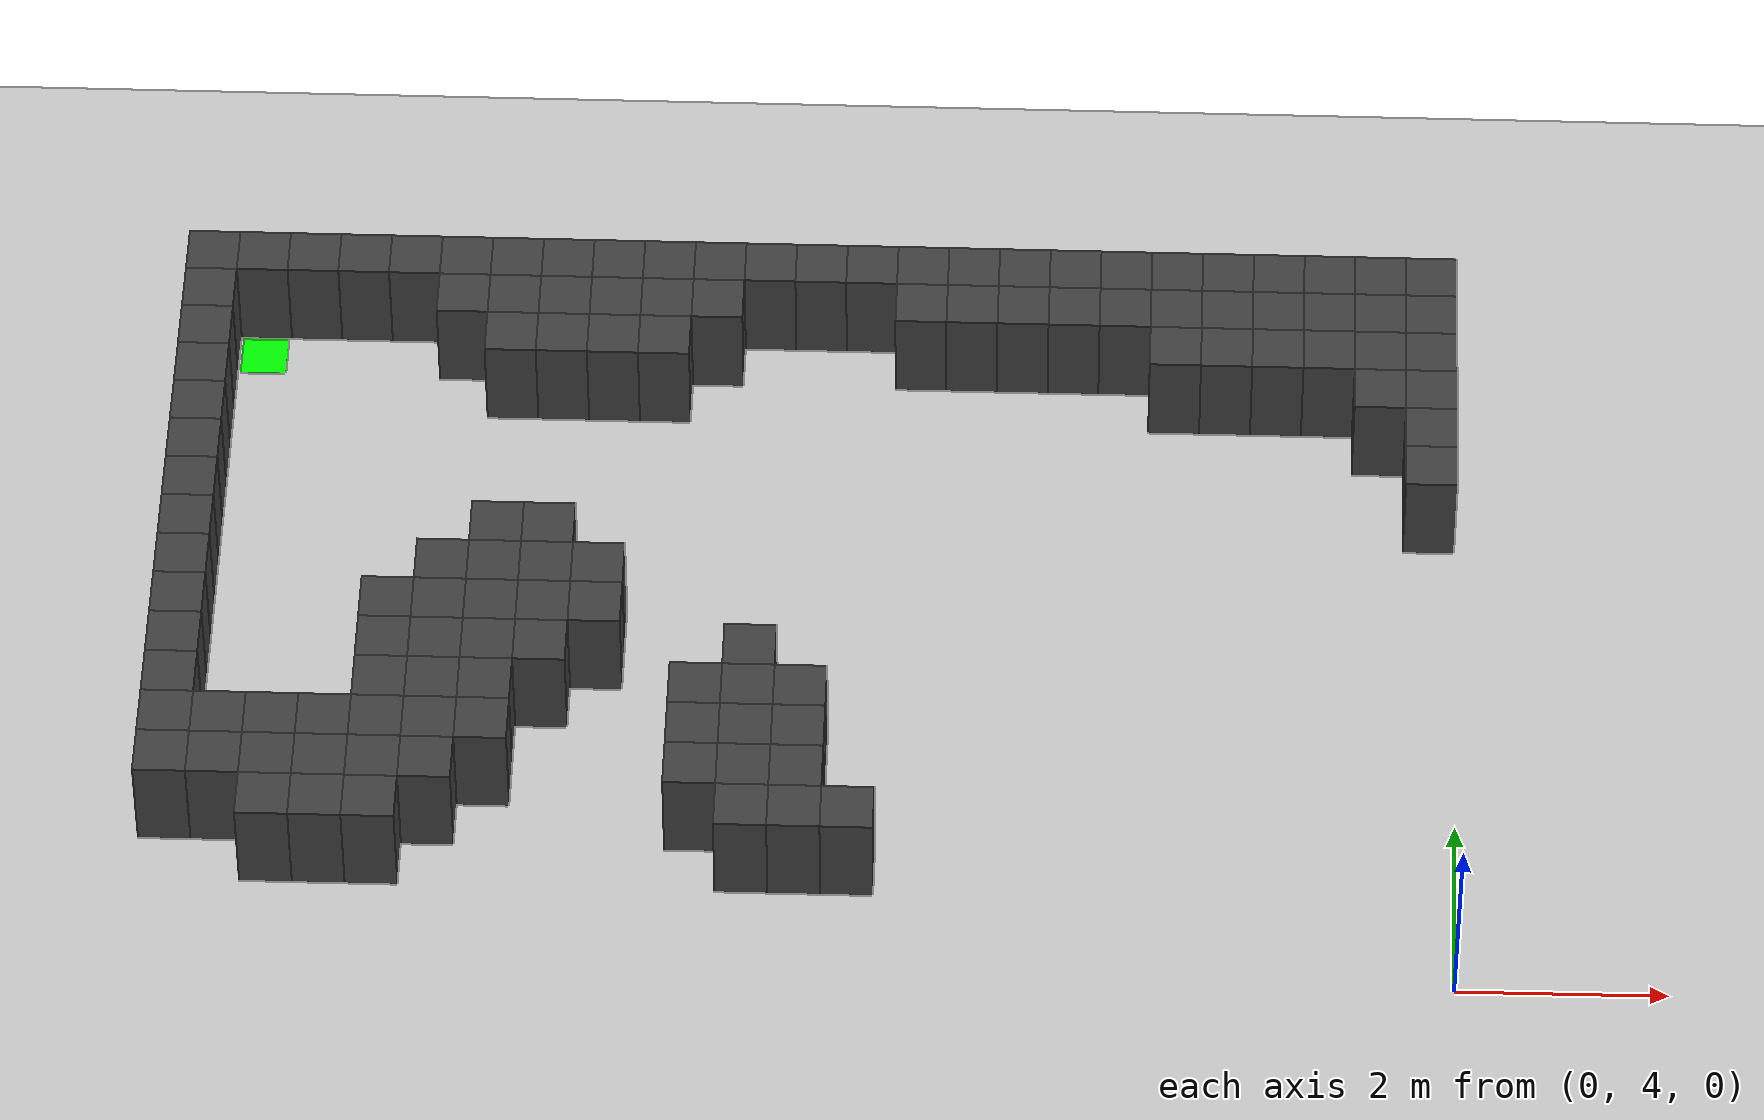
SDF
<sdf version="1.7">
 <world name="map_9152">
  <model name="ground_plane">
   <static>true</static>
   <link name="link">
    <collision name="collision">
     <geometry><plane><normal>0 0 1</normal><size>200 200</size></plane></geometry>
    </collision>
    <visual name="visual">
     <geometry><plane><normal>0 0 1</normal><size>200 200</size></plane></geometry>
     <material><ambient>0.8 0.8 0.8 1</ambient><diffuse>0.8 0.8 0.8 1</diffuse></material>
    </visual>
   </link>
  </model>
  <model name="maze_environment">
   <static>true</static>
   <link name="wall_0">
    <pose>-12.250 12.250 0.500 0 0 0</pose>
    <collision name="col"><geometry><box><size>0.5 0.5 1.0</size></box></geometry></collision>
    <visual name="vis">
     <geometry><box><size>0.5 0.5 1.0</size></box></geometry>
     <material><ambient>0.15 0.15 0.15 1</ambient><diffuse>0.25 0.25 0.25 1</diffuse></material>
    </visual>
   </link>
   <link name="wall_1">
    <pose>-11.750 12.250 0.500 0 0 0</pose>
    <collision name="col"><geometry><box><size>0.5 0.5 1.0</size></box></geometry></collision>
    <visual name="vis">
     <geometry><box><size>0.5 0.5 1.0</size></box></geometry>
     <material><ambient>0.15 0.15 0.15 1</ambient><diffuse>0.25 0.25 0.25 1</diffuse></material>
    </visual>
   </link>
   <link name="wall_2">
    <pose>-11.250 12.250 0.500 0 0 0</pose>
    <collision name="col"><geometry><box><size>0.5 0.5 1.0</size></box></geometry></collision>
    <visual name="vis">
     <geometry><box><size>0.5 0.5 1.0</size></box></geometry>
     <material><ambient>0.15 0.15 0.15 1</ambient><diffuse>0.25 0.25 0.25 1</diffuse></material>
    </visual>
   </link>
   <link name="wall_3">
    <pose>-10.750 12.250 0.500 0 0 0</pose>
    <collision name="col"><geometry><box><size>0.5 0.5 1.0</size></box></geometry></collision>
    <visual name="vis">
     <geometry><box><size>0.5 0.5 1.0</size></box></geometry>
     <material><ambient>0.15 0.15 0.15 1</ambient><diffuse>0.25 0.25 0.25 1</diffuse></material>
    </visual>
   </link>
   <link name="wall_4">
    <pose>-10.250 12.250 0.500 0 0 0</pose>
    <collision name="col"><geometry><box><size>0.5 0.5 1.0</size></box></geometry></collision>
    <visual name="vis">
     <geometry><box><size>0.5 0.5 1.0</size></box></geometry>
     <material><ambient>0.15 0.15 0.15 1</ambient><diffuse>0.25 0.25 0.25 1</diffuse></material>
    </visual>
   </link>
   <link name="wall_5">
    <pose>-9.750 12.250 0.500 0 0 0</pose>
    <collision name="col"><geometry><box><size>0.5 0.5 1.0</size></box></geometry></collision>
    <visual name="vis">
     <geometry><box><size>0.5 0.5 1.0</size></box></geometry>
     <material><ambient>0.15 0.15 0.15 1</ambient><diffuse>0.25 0.25 0.25 1</diffuse></material>
    </visual>
   </link>
   <link name="wall_6">
    <pose>-9.250 12.250 0.500 0 0 0</pose>
    <collision name="col"><geometry><box><size>0.5 0.5 1.0</size></box></geometry></collision>
    <visual name="vis">
     <geometry><box><size>0.5 0.5 1.0</size></box></geometry>
     <material><ambient>0.15 0.15 0.15 1</ambient><diffuse>0.25 0.25 0.25 1</diffuse></material>
    </visual>
   </link>
   <link name="wall_7">
    <pose>-8.750 12.250 0.500 0 0 0</pose>
    <collision name="col"><geometry><box><size>0.5 0.5 1.0</size></box></geometry></collision>
    <visual name="vis">
     <geometry><box><size>0.5 0.5 1.0</size></box></geometry>
     <material><ambient>0.15 0.15 0.15 1</ambient><diffuse>0.25 0.25 0.25 1</diffuse></material>
    </visual>
   </link>
   <link name="wall_8">
    <pose>-8.250 12.250 0.500 0 0 0</pose>
    <collision name="col"><geometry><box><size>0.5 0.5 1.0</size></box></geometry></collision>
    <visual name="vis">
     <geometry><box><size>0.5 0.5 1.0</size></box></geometry>
     <material><ambient>0.15 0.15 0.15 1</ambient><diffuse>0.25 0.25 0.25 1</diffuse></material>
    </visual>
   </link>
   <link name="wall_9">
    <pose>-7.750 12.250 0.500 0 0 0</pose>
    <collision name="col"><geometry><box><size>0.5 0.5 1.0</size></box></geometry></collision>
    <visual name="vis">
     <geometry><box><size>0.5 0.5 1.0</size></box></geometry>
     <material><ambient>0.15 0.15 0.15 1</ambient><diffuse>0.25 0.25 0.25 1</diffuse></material>
    </visual>
   </link>
   <link name="wall_10">
    <pose>-7.250 12.250 0.500 0 0 0</pose>
    <collision name="col"><geometry><box><size>0.5 0.5 1.0</size></box></geometry></collision>
    <visual name="vis">
     <geometry><box><size>0.5 0.5 1.0</size></box></geometry>
     <material><ambient>0.15 0.15 0.15 1</ambient><diffuse>0.25 0.25 0.25 1</diffuse></material>
    </visual>
   </link>
   <link name="wall_11">
    <pose>-6.750 12.250 0.500 0 0 0</pose>
    <collision name="col"><geometry><box><size>0.5 0.5 1.0</size></box></geometry></collision>
    <visual name="vis">
     <geometry><box><size>0.5 0.5 1.0</size></box></geometry>
     <material><ambient>0.15 0.15 0.15 1</ambient><diffuse>0.25 0.25 0.25 1</diffuse></material>
    </visual>
   </link>
   <link name="wall_12">
    <pose>-6.250 12.250 0.500 0 0 0</pose>
    <collision name="col"><geometry><box><size>0.5 0.5 1.0</size></box></geometry></collision>
    <visual name="vis">
     <geometry><box><size>0.5 0.5 1.0</size></box></geometry>
     <material><ambient>0.15 0.15 0.15 1</ambient><diffuse>0.25 0.25 0.25 1</diffuse></material>
    </visual>
   </link>
   <link name="wall_13">
    <pose>-5.750 12.250 0.500 0 0 0</pose>
    <collision name="col"><geometry><box><size>0.5 0.5 1.0</size></box></geometry></collision>
    <visual name="vis">
     <geometry><box><size>0.5 0.5 1.0</size></box></geometry>
     <material><ambient>0.15 0.15 0.15 1</ambient><diffuse>0.25 0.25 0.25 1</diffuse></material>
    </visual>
   </link>
   <link name="wall_14">
    <pose>-5.250 12.250 0.500 0 0 0</pose>
    <collision name="col"><geometry><box><size>0.5 0.5 1.0</size></box></geometry></collision>
    <visual name="vis">
     <geometry><box><size>0.5 0.5 1.0</size></box></geometry>
     <material><ambient>0.15 0.15 0.15 1</ambient><diffuse>0.25 0.25 0.25 1</diffuse></material>
    </visual>
   </link>
   <link name="wall_15">
    <pose>-4.750 12.250 0.500 0 0 0</pose>
    <collision name="col"><geometry><box><size>0.5 0.5 1.0</size></box></geometry></collision>
    <visual name="vis">
     <geometry><box><size>0.5 0.5 1.0</size></box></geometry>
     <material><ambient>0.15 0.15 0.15 1</ambient><diffuse>0.25 0.25 0.25 1</diffuse></material>
    </visual>
   </link>
   <link name="wall_16">
    <pose>-4.250 12.250 0.500 0 0 0</pose>
    <collision name="col"><geometry><box><size>0.5 0.5 1.0</size></box></geometry></collision>
    <visual name="vis">
     <geometry><box><size>0.5 0.5 1.0</size></box></geometry>
     <material><ambient>0.15 0.15 0.15 1</ambient><diffuse>0.25 0.25 0.25 1</diffuse></material>
    </visual>
   </link>
   <link name="wall_17">
    <pose>-3.750 12.250 0.500 0 0 0</pose>
    <collision name="col"><geometry><box><size>0.5 0.5 1.0</size></box></geometry></collision>
    <visual name="vis">
     <geometry><box><size>0.5 0.5 1.0</size></box></geometry>
     <material><ambient>0.15 0.15 0.15 1</ambient><diffuse>0.25 0.25 0.25 1</diffuse></material>
    </visual>
   </link>
   <link name="wall_18">
    <pose>-3.250 12.250 0.500 0 0 0</pose>
    <collision name="col"><geometry><box><size>0.5 0.5 1.0</size></box></geometry></collision>
    <visual name="vis">
     <geometry><box><size>0.5 0.5 1.0</size></box></geometry>
     <material><ambient>0.15 0.15 0.15 1</ambient><diffuse>0.25 0.25 0.25 1</diffuse></material>
    </visual>
   </link>
   <link name="wall_19">
    <pose>-2.750 12.250 0.500 0 0 0</pose>
    <collision name="col"><geometry><box><size>0.5 0.5 1.0</size></box></geometry></collision>
    <visual name="vis">
     <geometry><box><size>0.5 0.5 1.0</size></box></geometry>
     <material><ambient>0.15 0.15 0.15 1</ambient><diffuse>0.25 0.25 0.25 1</diffuse></material>
    </visual>
   </link>
   <link name="wall_20">
    <pose>-2.250 12.250 0.500 0 0 0</pose>
    <collision name="col"><geometry><box><size>0.5 0.5 1.0</size></box></geometry></collision>
    <visual name="vis">
     <geometry><box><size>0.5 0.5 1.0</size></box></geometry>
     <material><ambient>0.15 0.15 0.15 1</ambient><diffuse>0.25 0.25 0.25 1</diffuse></material>
    </visual>
   </link>
   <link name="wall_21">
    <pose>-1.750 12.250 0.500 0 0 0</pose>
    <collision name="col"><geometry><box><size>0.5 0.5 1.0</size></box></geometry></collision>
    <visual name="vis">
     <geometry><box><size>0.5 0.5 1.0</size></box></geometry>
     <material><ambient>0.15 0.15 0.15 1</ambient><diffuse>0.25 0.25 0.25 1</diffuse></material>
    </visual>
   </link>
   <link name="wall_22">
    <pose>-1.250 12.250 0.500 0 0 0</pose>
    <collision name="col"><geometry><box><size>0.5 0.5 1.0</size></box></geometry></collision>
    <visual name="vis">
     <geometry><box><size>0.5 0.5 1.0</size></box></geometry>
     <material><ambient>0.15 0.15 0.15 1</ambient><diffuse>0.25 0.25 0.25 1</diffuse></material>
    </visual>
   </link>
   <link name="wall_23">
    <pose>-0.750 12.250 0.500 0 0 0</pose>
    <collision name="col"><geometry><box><size>0.5 0.5 1.0</size></box></geometry></collision>
    <visual name="vis">
     <geometry><box><size>0.5 0.5 1.0</size></box></geometry>
     <material><ambient>0.15 0.15 0.15 1</ambient><diffuse>0.25 0.25 0.25 1</diffuse></material>
    </visual>
   </link>
   <link name="wall_24">
    <pose>-0.250 12.250 0.500 0 0 0</pose>
    <collision name="col"><geometry><box><size>0.5 0.5 1.0</size></box></geometry></collision>
    <visual name="vis">
     <geometry><box><size>0.5 0.5 1.0</size></box></geometry>
     <material><ambient>0.15 0.15 0.15 1</ambient><diffuse>0.25 0.25 0.25 1</diffuse></material>
    </visual>
   </link>
   <link name="wall_50">
    <pose>-12.250 11.750 0.500 0 0 0</pose>
    <collision name="col"><geometry><box><size>0.5 0.5 1.0</size></box></geometry></collision>
    <visual name="vis">
     <geometry><box><size>0.5 0.5 1.0</size></box></geometry>
     <material><ambient>0.15 0.15 0.15 1</ambient><diffuse>0.25 0.25 0.25 1</diffuse></material>
    </visual>
   </link>
   <link name="wall_51">
    <pose>-9.750 11.750 0.500 0 0 0</pose>
    <collision name="col"><geometry><box><size>0.5 0.5 1.0</size></box></geometry></collision>
    <visual name="vis">
     <geometry><box><size>0.5 0.5 1.0</size></box></geometry>
     <material><ambient>0.15 0.15 0.15 1</ambient><diffuse>0.25 0.25 0.25 1</diffuse></material>
    </visual>
   </link>
   <link name="wall_52">
    <pose>-9.250 11.750 0.500 0 0 0</pose>
    <collision name="col"><geometry><box><size>0.5 0.5 1.0</size></box></geometry></collision>
    <visual name="vis">
     <geometry><box><size>0.5 0.5 1.0</size></box></geometry>
     <material><ambient>0.15 0.15 0.15 1</ambient><diffuse>0.25 0.25 0.25 1</diffuse></material>
    </visual>
   </link>
   <link name="wall_53">
    <pose>-8.750 11.750 0.500 0 0 0</pose>
    <collision name="col"><geometry><box><size>0.5 0.5 1.0</size></box></geometry></collision>
    <visual name="vis">
     <geometry><box><size>0.5 0.5 1.0</size></box></geometry>
     <material><ambient>0.15 0.15 0.15 1</ambient><diffuse>0.25 0.25 0.25 1</diffuse></material>
    </visual>
   </link>
   <link name="wall_54">
    <pose>-8.250 11.750 0.500 0 0 0</pose>
    <collision name="col"><geometry><box><size>0.5 0.5 1.0</size></box></geometry></collision>
    <visual name="vis">
     <geometry><box><size>0.5 0.5 1.0</size></box></geometry>
     <material><ambient>0.15 0.15 0.15 1</ambient><diffuse>0.25 0.25 0.25 1</diffuse></material>
    </visual>
   </link>
   <link name="wall_55">
    <pose>-7.750 11.750 0.500 0 0 0</pose>
    <collision name="col"><geometry><box><size>0.5 0.5 1.0</size></box></geometry></collision>
    <visual name="vis">
     <geometry><box><size>0.5 0.5 1.0</size></box></geometry>
     <material><ambient>0.15 0.15 0.15 1</ambient><diffuse>0.25 0.25 0.25 1</diffuse></material>
    </visual>
   </link>
   <link name="wall_56">
    <pose>-7.250 11.750 0.500 0 0 0</pose>
    <collision name="col"><geometry><box><size>0.5 0.5 1.0</size></box></geometry></collision>
    <visual name="vis">
     <geometry><box><size>0.5 0.5 1.0</size></box></geometry>
     <material><ambient>0.15 0.15 0.15 1</ambient><diffuse>0.25 0.25 0.25 1</diffuse></material>
    </visual>
   </link>
   <link name="wall_57">
    <pose>-5.250 11.750 0.500 0 0 0</pose>
    <collision name="col"><geometry><box><size>0.5 0.5 1.0</size></box></geometry></collision>
    <visual name="vis">
     <geometry><box><size>0.5 0.5 1.0</size></box></geometry>
     <material><ambient>0.15 0.15 0.15 1</ambient><diffuse>0.25 0.25 0.25 1</diffuse></material>
    </visual>
   </link>
   <link name="wall_58">
    <pose>-4.750 11.750 0.500 0 0 0</pose>
    <collision name="col"><geometry><box><size>0.5 0.5 1.0</size></box></geometry></collision>
    <visual name="vis">
     <geometry><box><size>0.5 0.5 1.0</size></box></geometry>
     <material><ambient>0.15 0.15 0.15 1</ambient><diffuse>0.25 0.25 0.25 1</diffuse></material>
    </visual>
   </link>
   <link name="wall_59">
    <pose>-4.250 11.750 0.500 0 0 0</pose>
    <collision name="col"><geometry><box><size>0.5 0.5 1.0</size></box></geometry></collision>
    <visual name="vis">
     <geometry><box><size>0.5 0.5 1.0</size></box></geometry>
     <material><ambient>0.15 0.15 0.15 1</ambient><diffuse>0.25 0.25 0.25 1</diffuse></material>
    </visual>
   </link>
   <link name="wall_60">
    <pose>-3.750 11.750 0.500 0 0 0</pose>
    <collision name="col"><geometry><box><size>0.5 0.5 1.0</size></box></geometry></collision>
    <visual name="vis">
     <geometry><box><size>0.5 0.5 1.0</size></box></geometry>
     <material><ambient>0.15 0.15 0.15 1</ambient><diffuse>0.25 0.25 0.25 1</diffuse></material>
    </visual>
   </link>
   <link name="wall_61">
    <pose>-3.250 11.750 0.500 0 0 0</pose>
    <collision name="col"><geometry><box><size>0.5 0.5 1.0</size></box></geometry></collision>
    <visual name="vis">
     <geometry><box><size>0.5 0.5 1.0</size></box></geometry>
     <material><ambient>0.15 0.15 0.15 1</ambient><diffuse>0.25 0.25 0.25 1</diffuse></material>
    </visual>
   </link>
   <link name="wall_62">
    <pose>-2.750 11.750 0.500 0 0 0</pose>
    <collision name="col"><geometry><box><size>0.5 0.5 1.0</size></box></geometry></collision>
    <visual name="vis">
     <geometry><box><size>0.5 0.5 1.0</size></box></geometry>
     <material><ambient>0.15 0.15 0.15 1</ambient><diffuse>0.25 0.25 0.25 1</diffuse></material>
    </visual>
   </link>
   <link name="wall_63">
    <pose>-2.250 11.750 0.500 0 0 0</pose>
    <collision name="col"><geometry><box><size>0.5 0.5 1.0</size></box></geometry></collision>
    <visual name="vis">
     <geometry><box><size>0.5 0.5 1.0</size></box></geometry>
     <material><ambient>0.15 0.15 0.15 1</ambient><diffuse>0.25 0.25 0.25 1</diffuse></material>
    </visual>
   </link>
   <link name="wall_64">
    <pose>-1.750 11.750 0.500 0 0 0</pose>
    <collision name="col"><geometry><box><size>0.5 0.5 1.0</size></box></geometry></collision>
    <visual name="vis">
     <geometry><box><size>0.5 0.5 1.0</size></box></geometry>
     <material><ambient>0.15 0.15 0.15 1</ambient><diffuse>0.25 0.25 0.25 1</diffuse></material>
    </visual>
   </link>
   <link name="wall_65">
    <pose>-1.250 11.750 0.500 0 0 0</pose>
    <collision name="col"><geometry><box><size>0.5 0.5 1.0</size></box></geometry></collision>
    <visual name="vis">
     <geometry><box><size>0.5 0.5 1.0</size></box></geometry>
     <material><ambient>0.15 0.15 0.15 1</ambient><diffuse>0.25 0.25 0.25 1</diffuse></material>
    </visual>
   </link>
   <link name="wall_66">
    <pose>-0.750 11.750 0.500 0 0 0</pose>
    <collision name="col"><geometry><box><size>0.5 0.5 1.0</size></box></geometry></collision>
    <visual name="vis">
     <geometry><box><size>0.5 0.5 1.0</size></box></geometry>
     <material><ambient>0.15 0.15 0.15 1</ambient><diffuse>0.25 0.25 0.25 1</diffuse></material>
    </visual>
   </link>
   <link name="wall_67">
    <pose>-0.250 11.750 0.500 0 0 0</pose>
    <collision name="col"><geometry><box><size>0.5 0.5 1.0</size></box></geometry></collision>
    <visual name="vis">
     <geometry><box><size>0.5 0.5 1.0</size></box></geometry>
     <material><ambient>0.15 0.15 0.15 1</ambient><diffuse>0.25 0.25 0.25 1</diffuse></material>
    </visual>
   </link>
   <link name="wall_89">
    <pose>-12.250 11.250 0.500 0 0 0</pose>
    <collision name="col"><geometry><box><size>0.5 0.5 1.0</size></box></geometry></collision>
    <visual name="vis">
     <geometry><box><size>0.5 0.5 1.0</size></box></geometry>
     <material><ambient>0.15 0.15 0.15 1</ambient><diffuse>0.25 0.25 0.25 1</diffuse></material>
    </visual>
   </link>
   <link name="wall_90">
    <pose>-9.250 11.250 0.500 0 0 0</pose>
    <collision name="col"><geometry><box><size>0.5 0.5 1.0</size></box></geometry></collision>
    <visual name="vis">
     <geometry><box><size>0.5 0.5 1.0</size></box></geometry>
     <material><ambient>0.15 0.15 0.15 1</ambient><diffuse>0.25 0.25 0.25 1</diffuse></material>
    </visual>
   </link>
   <link name="wall_91">
    <pose>-8.750 11.250 0.500 0 0 0</pose>
    <collision name="col"><geometry><box><size>0.5 0.5 1.0</size></box></geometry></collision>
    <visual name="vis">
     <geometry><box><size>0.5 0.5 1.0</size></box></geometry>
     <material><ambient>0.15 0.15 0.15 1</ambient><diffuse>0.25 0.25 0.25 1</diffuse></material>
    </visual>
   </link>
   <link name="wall_92">
    <pose>-8.250 11.250 0.500 0 0 0</pose>
    <collision name="col"><geometry><box><size>0.5 0.5 1.0</size></box></geometry></collision>
    <visual name="vis">
     <geometry><box><size>0.5 0.5 1.0</size></box></geometry>
     <material><ambient>0.15 0.15 0.15 1</ambient><diffuse>0.25 0.25 0.25 1</diffuse></material>
    </visual>
   </link>
   <link name="wall_93">
    <pose>-7.750 11.250 0.500 0 0 0</pose>
    <collision name="col"><geometry><box><size>0.5 0.5 1.0</size></box></geometry></collision>
    <visual name="vis">
     <geometry><box><size>0.5 0.5 1.0</size></box></geometry>
     <material><ambient>0.15 0.15 0.15 1</ambient><diffuse>0.25 0.25 0.25 1</diffuse></material>
    </visual>
   </link>
   <link name="wall_94">
    <pose>-2.750 11.250 0.500 0 0 0</pose>
    <collision name="col"><geometry><box><size>0.5 0.5 1.0</size></box></geometry></collision>
    <visual name="vis">
     <geometry><box><size>0.5 0.5 1.0</size></box></geometry>
     <material><ambient>0.15 0.15 0.15 1</ambient><diffuse>0.25 0.25 0.25 1</diffuse></material>
    </visual>
   </link>
   <link name="wall_95">
    <pose>-2.250 11.250 0.500 0 0 0</pose>
    <collision name="col"><geometry><box><size>0.5 0.5 1.0</size></box></geometry></collision>
    <visual name="vis">
     <geometry><box><size>0.5 0.5 1.0</size></box></geometry>
     <material><ambient>0.15 0.15 0.15 1</ambient><diffuse>0.25 0.25 0.25 1</diffuse></material>
    </visual>
   </link>
   <link name="wall_96">
    <pose>-1.750 11.250 0.500 0 0 0</pose>
    <collision name="col"><geometry><box><size>0.5 0.5 1.0</size></box></geometry></collision>
    <visual name="vis">
     <geometry><box><size>0.5 0.5 1.0</size></box></geometry>
     <material><ambient>0.15 0.15 0.15 1</ambient><diffuse>0.25 0.25 0.25 1</diffuse></material>
    </visual>
   </link>
   <link name="wall_97">
    <pose>-1.250 11.250 0.500 0 0 0</pose>
    <collision name="col"><geometry><box><size>0.5 0.5 1.0</size></box></geometry></collision>
    <visual name="vis">
     <geometry><box><size>0.5 0.5 1.0</size></box></geometry>
     <material><ambient>0.15 0.15 0.15 1</ambient><diffuse>0.25 0.25 0.25 1</diffuse></material>
    </visual>
   </link>
   <link name="wall_98">
    <pose>-0.750 11.250 0.500 0 0 0</pose>
    <collision name="col"><geometry><box><size>0.5 0.5 1.0</size></box></geometry></collision>
    <visual name="vis">
     <geometry><box><size>0.5 0.5 1.0</size></box></geometry>
     <material><ambient>0.15 0.15 0.15 1</ambient><diffuse>0.25 0.25 0.25 1</diffuse></material>
    </visual>
   </link>
   <link name="wall_99">
    <pose>-0.250 11.250 0.500 0 0 0</pose>
    <collision name="col"><geometry><box><size>0.5 0.5 1.0</size></box></geometry></collision>
    <visual name="vis">
     <geometry><box><size>0.5 0.5 1.0</size></box></geometry>
     <material><ambient>0.15 0.15 0.15 1</ambient><diffuse>0.25 0.25 0.25 1</diffuse></material>
    </visual>
   </link>
   <link name="wall_115">
    <pose>-12.250 10.750 0.500 0 0 0</pose>
    <collision name="col"><geometry><box><size>0.5 0.5 1.0</size></box></geometry></collision>
    <visual name="vis">
     <geometry><box><size>0.5 0.5 1.0</size></box></geometry>
     <material><ambient>0.15 0.15 0.15 1</ambient><diffuse>0.25 0.25 0.25 1</diffuse></material>
    </visual>
   </link>
   <link name="wall_116">
    <pose>-0.750 10.750 0.500 0 0 0</pose>
    <collision name="col"><geometry><box><size>0.5 0.5 1.0</size></box></geometry></collision>
    <visual name="vis">
     <geometry><box><size>0.5 0.5 1.0</size></box></geometry>
     <material><ambient>0.15 0.15 0.15 1</ambient><diffuse>0.25 0.25 0.25 1</diffuse></material>
    </visual>
   </link>
   <link name="wall_117">
    <pose>-0.250 10.750 0.500 0 0 0</pose>
    <collision name="col"><geometry><box><size>0.5 0.5 1.0</size></box></geometry></collision>
    <visual name="vis">
     <geometry><box><size>0.5 0.5 1.0</size></box></geometry>
     <material><ambient>0.15 0.15 0.15 1</ambient><diffuse>0.25 0.25 0.25 1</diffuse></material>
    </visual>
   </link>
   <link name="wall_129">
    <pose>-12.250 10.250 0.500 0 0 0</pose>
    <collision name="col"><geometry><box><size>0.5 0.5 1.0</size></box></geometry></collision>
    <visual name="vis">
     <geometry><box><size>0.5 0.5 1.0</size></box></geometry>
     <material><ambient>0.15 0.15 0.15 1</ambient><diffuse>0.25 0.25 0.25 1</diffuse></material>
    </visual>
   </link>
   <link name="wall_130">
    <pose>-0.250 10.250 0.500 0 0 0</pose>
    <collision name="col"><geometry><box><size>0.5 0.5 1.0</size></box></geometry></collision>
    <visual name="vis">
     <geometry><box><size>0.5 0.5 1.0</size></box></geometry>
     <material><ambient>0.15 0.15 0.15 1</ambient><diffuse>0.25 0.25 0.25 1</diffuse></material>
    </visual>
   </link>
   <link name="wall_140">
    <pose>-12.250 9.750 0.500 0 0 0</pose>
    <collision name="col"><geometry><box><size>0.5 0.5 1.0</size></box></geometry></collision>
    <visual name="vis">
     <geometry><box><size>0.5 0.5 1.0</size></box></geometry>
     <material><ambient>0.15 0.15 0.15 1</ambient><diffuse>0.25 0.25 0.25 1</diffuse></material>
    </visual>
   </link>
   <link name="wall_141">
    <pose>-0.250 9.750 0.500 0 0 0</pose>
    <collision name="col"><geometry><box><size>0.5 0.5 1.0</size></box></geometry></collision>
    <visual name="vis">
     <geometry><box><size>0.5 0.5 1.0</size></box></geometry>
     <material><ambient>0.15 0.15 0.15 1</ambient><diffuse>0.25 0.25 0.25 1</diffuse></material>
    </visual>
   </link>
   <link name="wall_146">
    <pose>-12.250 9.250 0.500 0 0 0</pose>
    <collision name="col"><geometry><box><size>0.5 0.5 1.0</size></box></geometry></collision>
    <visual name="vis">
     <geometry><box><size>0.5 0.5 1.0</size></box></geometry>
     <material><ambient>0.15 0.15 0.15 1</ambient><diffuse>0.25 0.25 0.25 1</diffuse></material>
    </visual>
   </link>
   <link name="wall_151">
    <pose>-12.250 8.750 0.500 0 0 0</pose>
    <collision name="col"><geometry><box><size>0.5 0.5 1.0</size></box></geometry></collision>
    <visual name="vis">
     <geometry><box><size>0.5 0.5 1.0</size></box></geometry>
     <material><ambient>0.15 0.15 0.15 1</ambient><diffuse>0.25 0.25 0.25 1</diffuse></material>
    </visual>
   </link>
   <link name="wall_152">
    <pose>-9.250 8.750 0.500 0 0 0</pose>
    <collision name="col"><geometry><box><size>0.5 0.5 1.0</size></box></geometry></collision>
    <visual name="vis">
     <geometry><box><size>0.5 0.5 1.0</size></box></geometry>
     <material><ambient>0.15 0.15 0.15 1</ambient><diffuse>0.25 0.25 0.25 1</diffuse></material>
    </visual>
   </link>
   <link name="wall_153">
    <pose>-8.750 8.750 0.500 0 0 0</pose>
    <collision name="col"><geometry><box><size>0.5 0.5 1.0</size></box></geometry></collision>
    <visual name="vis">
     <geometry><box><size>0.5 0.5 1.0</size></box></geometry>
     <material><ambient>0.15 0.15 0.15 1</ambient><diffuse>0.25 0.25 0.25 1</diffuse></material>
    </visual>
   </link>
   <link name="wall_156">
    <pose>-12.250 8.250 0.500 0 0 0</pose>
    <collision name="col"><geometry><box><size>0.5 0.5 1.0</size></box></geometry></collision>
    <visual name="vis">
     <geometry><box><size>0.5 0.5 1.0</size></box></geometry>
     <material><ambient>0.15 0.15 0.15 1</ambient><diffuse>0.25 0.25 0.25 1</diffuse></material>
    </visual>
   </link>
   <link name="wall_157">
    <pose>-9.750 8.250 0.500 0 0 0</pose>
    <collision name="col"><geometry><box><size>0.5 0.5 1.0</size></box></geometry></collision>
    <visual name="vis">
     <geometry><box><size>0.5 0.5 1.0</size></box></geometry>
     <material><ambient>0.15 0.15 0.15 1</ambient><diffuse>0.25 0.25 0.25 1</diffuse></material>
    </visual>
   </link>
   <link name="wall_158">
    <pose>-9.250 8.250 0.500 0 0 0</pose>
    <collision name="col"><geometry><box><size>0.5 0.5 1.0</size></box></geometry></collision>
    <visual name="vis">
     <geometry><box><size>0.5 0.5 1.0</size></box></geometry>
     <material><ambient>0.15 0.15 0.15 1</ambient><diffuse>0.25 0.25 0.25 1</diffuse></material>
    </visual>
   </link>
   <link name="wall_159">
    <pose>-8.750 8.250 0.500 0 0 0</pose>
    <collision name="col"><geometry><box><size>0.5 0.5 1.0</size></box></geometry></collision>
    <visual name="vis">
     <geometry><box><size>0.5 0.5 1.0</size></box></geometry>
     <material><ambient>0.15 0.15 0.15 1</ambient><diffuse>0.25 0.25 0.25 1</diffuse></material>
    </visual>
   </link>
   <link name="wall_160">
    <pose>-8.250 8.250 0.500 0 0 0</pose>
    <collision name="col"><geometry><box><size>0.5 0.5 1.0</size></box></geometry></collision>
    <visual name="vis">
     <geometry><box><size>0.5 0.5 1.0</size></box></geometry>
     <material><ambient>0.15 0.15 0.15 1</ambient><diffuse>0.25 0.25 0.25 1</diffuse></material>
    </visual>
   </link>
   <link name="wall_164">
    <pose>-12.250 7.750 0.500 0 0 0</pose>
    <collision name="col"><geometry><box><size>0.5 0.5 1.0</size></box></geometry></collision>
    <visual name="vis">
     <geometry><box><size>0.5 0.5 1.0</size></box></geometry>
     <material><ambient>0.15 0.15 0.15 1</ambient><diffuse>0.25 0.25 0.25 1</diffuse></material>
    </visual>
   </link>
   <link name="wall_165">
    <pose>-10.250 7.750 0.500 0 0 0</pose>
    <collision name="col"><geometry><box><size>0.5 0.5 1.0</size></box></geometry></collision>
    <visual name="vis">
     <geometry><box><size>0.5 0.5 1.0</size></box></geometry>
     <material><ambient>0.15 0.15 0.15 1</ambient><diffuse>0.25 0.25 0.25 1</diffuse></material>
    </visual>
   </link>
   <link name="wall_166">
    <pose>-9.750 7.750 0.500 0 0 0</pose>
    <collision name="col"><geometry><box><size>0.5 0.5 1.0</size></box></geometry></collision>
    <visual name="vis">
     <geometry><box><size>0.5 0.5 1.0</size></box></geometry>
     <material><ambient>0.15 0.15 0.15 1</ambient><diffuse>0.25 0.25 0.25 1</diffuse></material>
    </visual>
   </link>
   <link name="wall_167">
    <pose>-9.250 7.750 0.500 0 0 0</pose>
    <collision name="col"><geometry><box><size>0.5 0.5 1.0</size></box></geometry></collision>
    <visual name="vis">
     <geometry><box><size>0.5 0.5 1.0</size></box></geometry>
     <material><ambient>0.15 0.15 0.15 1</ambient><diffuse>0.25 0.25 0.25 1</diffuse></material>
    </visual>
   </link>
   <link name="wall_168">
    <pose>-8.750 7.750 0.500 0 0 0</pose>
    <collision name="col"><geometry><box><size>0.5 0.5 1.0</size></box></geometry></collision>
    <visual name="vis">
     <geometry><box><size>0.5 0.5 1.0</size></box></geometry>
     <material><ambient>0.15 0.15 0.15 1</ambient><diffuse>0.25 0.25 0.25 1</diffuse></material>
    </visual>
   </link>
   <link name="wall_169">
    <pose>-8.250 7.750 0.500 0 0 0</pose>
    <collision name="col"><geometry><box><size>0.5 0.5 1.0</size></box></geometry></collision>
    <visual name="vis">
     <geometry><box><size>0.5 0.5 1.0</size></box></geometry>
     <material><ambient>0.15 0.15 0.15 1</ambient><diffuse>0.25 0.25 0.25 1</diffuse></material>
    </visual>
   </link>
   <link name="wall_176">
    <pose>-12.250 7.250 0.500 0 0 0</pose>
    <collision name="col"><geometry><box><size>0.5 0.5 1.0</size></box></geometry></collision>
    <visual name="vis">
     <geometry><box><size>0.5 0.5 1.0</size></box></geometry>
     <material><ambient>0.15 0.15 0.15 1</ambient><diffuse>0.25 0.25 0.25 1</diffuse></material>
    </visual>
   </link>
   <link name="wall_177">
    <pose>-10.250 7.250 0.500 0 0 0</pose>
    <collision name="col"><geometry><box><size>0.5 0.5 1.0</size></box></geometry></collision>
    <visual name="vis">
     <geometry><box><size>0.5 0.5 1.0</size></box></geometry>
     <material><ambient>0.15 0.15 0.15 1</ambient><diffuse>0.25 0.25 0.25 1</diffuse></material>
    </visual>
   </link>
   <link name="wall_178">
    <pose>-9.750 7.250 0.500 0 0 0</pose>
    <collision name="col"><geometry><box><size>0.5 0.5 1.0</size></box></geometry></collision>
    <visual name="vis">
     <geometry><box><size>0.5 0.5 1.0</size></box></geometry>
     <material><ambient>0.15 0.15 0.15 1</ambient><diffuse>0.25 0.25 0.25 1</diffuse></material>
    </visual>
   </link>
   <link name="wall_179">
    <pose>-9.250 7.250 0.500 0 0 0</pose>
    <collision name="col"><geometry><box><size>0.5 0.5 1.0</size></box></geometry></collision>
    <visual name="vis">
     <geometry><box><size>0.5 0.5 1.0</size></box></geometry>
     <material><ambient>0.15 0.15 0.15 1</ambient><diffuse>0.25 0.25 0.25 1</diffuse></material>
    </visual>
   </link>
   <link name="wall_180">
    <pose>-8.750 7.250 0.500 0 0 0</pose>
    <collision name="col"><geometry><box><size>0.5 0.5 1.0</size></box></geometry></collision>
    <visual name="vis">
     <geometry><box><size>0.5 0.5 1.0</size></box></geometry>
     <material><ambient>0.15 0.15 0.15 1</ambient><diffuse>0.25 0.25 0.25 1</diffuse></material>
    </visual>
   </link>
   <link name="wall_181">
    <pose>-6.750 7.250 0.500 0 0 0</pose>
    <collision name="col"><geometry><box><size>0.5 0.5 1.0</size></box></geometry></collision>
    <visual name="vis">
     <geometry><box><size>0.5 0.5 1.0</size></box></geometry>
     <material><ambient>0.15 0.15 0.15 1</ambient><diffuse>0.25 0.25 0.25 1</diffuse></material>
    </visual>
   </link>
   <link name="wall_189">
    <pose>-12.250 6.750 0.500 0 0 0</pose>
    <collision name="col"><geometry><box><size>0.5 0.5 1.0</size></box></geometry></collision>
    <visual name="vis">
     <geometry><box><size>0.5 0.5 1.0</size></box></geometry>
     <material><ambient>0.15 0.15 0.15 1</ambient><diffuse>0.25 0.25 0.25 1</diffuse></material>
    </visual>
   </link>
   <link name="wall_190">
    <pose>-10.250 6.750 0.500 0 0 0</pose>
    <collision name="col"><geometry><box><size>0.5 0.5 1.0</size></box></geometry></collision>
    <visual name="vis">
     <geometry><box><size>0.5 0.5 1.0</size></box></geometry>
     <material><ambient>0.15 0.15 0.15 1</ambient><diffuse>0.25 0.25 0.25 1</diffuse></material>
    </visual>
   </link>
   <link name="wall_191">
    <pose>-9.750 6.750 0.500 0 0 0</pose>
    <collision name="col"><geometry><box><size>0.5 0.5 1.0</size></box></geometry></collision>
    <visual name="vis">
     <geometry><box><size>0.5 0.5 1.0</size></box></geometry>
     <material><ambient>0.15 0.15 0.15 1</ambient><diffuse>0.25 0.25 0.25 1</diffuse></material>
    </visual>
   </link>
   <link name="wall_192">
    <pose>-9.250 6.750 0.500 0 0 0</pose>
    <collision name="col"><geometry><box><size>0.5 0.5 1.0</size></box></geometry></collision>
    <visual name="vis">
     <geometry><box><size>0.5 0.5 1.0</size></box></geometry>
     <material><ambient>0.15 0.15 0.15 1</ambient><diffuse>0.25 0.25 0.25 1</diffuse></material>
    </visual>
   </link>
   <link name="wall_193">
    <pose>-7.250 6.750 0.500 0 0 0</pose>
    <collision name="col"><geometry><box><size>0.5 0.5 1.0</size></box></geometry></collision>
    <visual name="vis">
     <geometry><box><size>0.5 0.5 1.0</size></box></geometry>
     <material><ambient>0.15 0.15 0.15 1</ambient><diffuse>0.25 0.25 0.25 1</diffuse></material>
    </visual>
   </link>
   <link name="wall_194">
    <pose>-6.750 6.750 0.500 0 0 0</pose>
    <collision name="col"><geometry><box><size>0.5 0.5 1.0</size></box></geometry></collision>
    <visual name="vis">
     <geometry><box><size>0.5 0.5 1.0</size></box></geometry>
     <material><ambient>0.15 0.15 0.15 1</ambient><diffuse>0.25 0.25 0.25 1</diffuse></material>
    </visual>
   </link>
   <link name="wall_195">
    <pose>-6.250 6.750 0.500 0 0 0</pose>
    <collision name="col"><geometry><box><size>0.5 0.5 1.0</size></box></geometry></collision>
    <visual name="vis">
     <geometry><box><size>0.5 0.5 1.0</size></box></geometry>
     <material><ambient>0.15 0.15 0.15 1</ambient><diffuse>0.25 0.25 0.25 1</diffuse></material>
    </visual>
   </link>
   <link name="wall_208">
    <pose>-12.250 6.250 0.500 0 0 0</pose>
    <collision name="col"><geometry><box><size>0.5 0.5 1.0</size></box></geometry></collision>
    <visual name="vis">
     <geometry><box><size>0.5 0.5 1.0</size></box></geometry>
     <material><ambient>0.15 0.15 0.15 1</ambient><diffuse>0.25 0.25 0.25 1</diffuse></material>
    </visual>
   </link>
   <link name="wall_209">
    <pose>-11.750 6.250 0.500 0 0 0</pose>
    <collision name="col"><geometry><box><size>0.5 0.5 1.0</size></box></geometry></collision>
    <visual name="vis">
     <geometry><box><size>0.5 0.5 1.0</size></box></geometry>
     <material><ambient>0.15 0.15 0.15 1</ambient><diffuse>0.25 0.25 0.25 1</diffuse></material>
    </visual>
   </link>
   <link name="wall_210">
    <pose>-11.250 6.250 0.500 0 0 0</pose>
    <collision name="col"><geometry><box><size>0.5 0.5 1.0</size></box></geometry></collision>
    <visual name="vis">
     <geometry><box><size>0.5 0.5 1.0</size></box></geometry>
     <material><ambient>0.15 0.15 0.15 1</ambient><diffuse>0.25 0.25 0.25 1</diffuse></material>
    </visual>
   </link>
   <link name="wall_211">
    <pose>-10.750 6.250 0.500 0 0 0</pose>
    <collision name="col"><geometry><box><size>0.5 0.5 1.0</size></box></geometry></collision>
    <visual name="vis">
     <geometry><box><size>0.5 0.5 1.0</size></box></geometry>
     <material><ambient>0.15 0.15 0.15 1</ambient><diffuse>0.25 0.25 0.25 1</diffuse></material>
    </visual>
   </link>
   <link name="wall_212">
    <pose>-10.250 6.250 0.500 0 0 0</pose>
    <collision name="col"><geometry><box><size>0.5 0.5 1.0</size></box></geometry></collision>
    <visual name="vis">
     <geometry><box><size>0.5 0.5 1.0</size></box></geometry>
     <material><ambient>0.15 0.15 0.15 1</ambient><diffuse>0.25 0.25 0.25 1</diffuse></material>
    </visual>
   </link>
   <link name="wall_213">
    <pose>-9.750 6.250 0.500 0 0 0</pose>
    <collision name="col"><geometry><box><size>0.5 0.5 1.0</size></box></geometry></collision>
    <visual name="vis">
     <geometry><box><size>0.5 0.5 1.0</size></box></geometry>
     <material><ambient>0.15 0.15 0.15 1</ambient><diffuse>0.25 0.25 0.25 1</diffuse></material>
    </visual>
   </link>
   <link name="wall_214">
    <pose>-9.250 6.250 0.500 0 0 0</pose>
    <collision name="col"><geometry><box><size>0.5 0.5 1.0</size></box></geometry></collision>
    <visual name="vis">
     <geometry><box><size>0.5 0.5 1.0</size></box></geometry>
     <material><ambient>0.15 0.15 0.15 1</ambient><diffuse>0.25 0.25 0.25 1</diffuse></material>
    </visual>
   </link>
   <link name="wall_215">
    <pose>-7.250 6.250 0.500 0 0 0</pose>
    <collision name="col"><geometry><box><size>0.5 0.5 1.0</size></box></geometry></collision>
    <visual name="vis">
     <geometry><box><size>0.5 0.5 1.0</size></box></geometry>
     <material><ambient>0.15 0.15 0.15 1</ambient><diffuse>0.25 0.25 0.25 1</diffuse></material>
    </visual>
   </link>
   <link name="wall_216">
    <pose>-6.750 6.250 0.500 0 0 0</pose>
    <collision name="col"><geometry><box><size>0.5 0.5 1.0</size></box></geometry></collision>
    <visual name="vis">
     <geometry><box><size>0.5 0.5 1.0</size></box></geometry>
     <material><ambient>0.15 0.15 0.15 1</ambient><diffuse>0.25 0.25 0.25 1</diffuse></material>
    </visual>
   </link>
   <link name="wall_217">
    <pose>-6.250 6.250 0.500 0 0 0</pose>
    <collision name="col"><geometry><box><size>0.5 0.5 1.0</size></box></geometry></collision>
    <visual name="vis">
     <geometry><box><size>0.5 0.5 1.0</size></box></geometry>
     <material><ambient>0.15 0.15 0.15 1</ambient><diffuse>0.25 0.25 0.25 1</diffuse></material>
    </visual>
   </link>
   <link name="wall_231">
    <pose>-12.250 5.750 0.500 0 0 0</pose>
    <collision name="col"><geometry><box><size>0.5 0.5 1.0</size></box></geometry></collision>
    <visual name="vis">
     <geometry><box><size>0.5 0.5 1.0</size></box></geometry>
     <material><ambient>0.15 0.15 0.15 1</ambient><diffuse>0.25 0.25 0.25 1</diffuse></material>
    </visual>
   </link>
   <link name="wall_232">
    <pose>-11.750 5.750 0.500 0 0 0</pose>
    <collision name="col"><geometry><box><size>0.5 0.5 1.0</size></box></geometry></collision>
    <visual name="vis">
     <geometry><box><size>0.5 0.5 1.0</size></box></geometry>
     <material><ambient>0.15 0.15 0.15 1</ambient><diffuse>0.25 0.25 0.25 1</diffuse></material>
    </visual>
   </link>
   <link name="wall_233">
    <pose>-11.250 5.750 0.500 0 0 0</pose>
    <collision name="col"><geometry><box><size>0.5 0.5 1.0</size></box></geometry></collision>
    <visual name="vis">
     <geometry><box><size>0.5 0.5 1.0</size></box></geometry>
     <material><ambient>0.15 0.15 0.15 1</ambient><diffuse>0.25 0.25 0.25 1</diffuse></material>
    </visual>
   </link>
   <link name="wall_234">
    <pose>-10.750 5.750 0.500 0 0 0</pose>
    <collision name="col"><geometry><box><size>0.5 0.5 1.0</size></box></geometry></collision>
    <visual name="vis">
     <geometry><box><size>0.5 0.5 1.0</size></box></geometry>
     <material><ambient>0.15 0.15 0.15 1</ambient><diffuse>0.25 0.25 0.25 1</diffuse></material>
    </visual>
   </link>
   <link name="wall_235">
    <pose>-10.250 5.750 0.500 0 0 0</pose>
    <collision name="col"><geometry><box><size>0.5 0.5 1.0</size></box></geometry></collision>
    <visual name="vis">
     <geometry><box><size>0.5 0.5 1.0</size></box></geometry>
     <material><ambient>0.15 0.15 0.15 1</ambient><diffuse>0.25 0.25 0.25 1</diffuse></material>
    </visual>
   </link>
   <link name="wall_236">
    <pose>-9.750 5.750 0.500 0 0 0</pose>
    <collision name="col"><geometry><box><size>0.5 0.5 1.0</size></box></geometry></collision>
    <visual name="vis">
     <geometry><box><size>0.5 0.5 1.0</size></box></geometry>
     <material><ambient>0.15 0.15 0.15 1</ambient><diffuse>0.25 0.25 0.25 1</diffuse></material>
    </visual>
   </link>
   <link name="wall_237">
    <pose>-7.250 5.750 0.500 0 0 0</pose>
    <collision name="col"><geometry><box><size>0.5 0.5 1.0</size></box></geometry></collision>
    <visual name="vis">
     <geometry><box><size>0.5 0.5 1.0</size></box></geometry>
     <material><ambient>0.15 0.15 0.15 1</ambient><diffuse>0.25 0.25 0.25 1</diffuse></material>
    </visual>
   </link>
   <link name="wall_238">
    <pose>-6.750 5.750 0.500 0 0 0</pose>
    <collision name="col"><geometry><box><size>0.5 0.5 1.0</size></box></geometry></collision>
    <visual name="vis">
     <geometry><box><size>0.5 0.5 1.0</size></box></geometry>
     <material><ambient>0.15 0.15 0.15 1</ambient><diffuse>0.25 0.25 0.25 1</diffuse></material>
    </visual>
   </link>
   <link name="wall_239">
    <pose>-6.250 5.750 0.500 0 0 0</pose>
    <collision name="col"><geometry><box><size>0.5 0.5 1.0</size></box></geometry></collision>
    <visual name="vis">
     <geometry><box><size>0.5 0.5 1.0</size></box></geometry>
     <material><ambient>0.15 0.15 0.15 1</ambient><diffuse>0.25 0.25 0.25 1</diffuse></material>
    </visual>
   </link>
   <link name="wall_258">
    <pose>-11.250 5.250 0.500 0 0 0</pose>
    <collision name="col"><geometry><box><size>0.5 0.5 1.0</size></box></geometry></collision>
    <visual name="vis">
     <geometry><box><size>0.5 0.5 1.0</size></box></geometry>
     <material><ambient>0.15 0.15 0.15 1</ambient><diffuse>0.25 0.25 0.25 1</diffuse></material>
    </visual>
   </link>
   <link name="wall_259">
    <pose>-10.750 5.250 0.500 0 0 0</pose>
    <collision name="col"><geometry><box><size>0.5 0.5 1.0</size></box></geometry></collision>
    <visual name="vis">
     <geometry><box><size>0.5 0.5 1.0</size></box></geometry>
     <material><ambient>0.15 0.15 0.15 1</ambient><diffuse>0.25 0.25 0.25 1</diffuse></material>
    </visual>
   </link>
   <link name="wall_260">
    <pose>-10.250 5.250 0.500 0 0 0</pose>
    <collision name="col"><geometry><box><size>0.5 0.5 1.0</size></box></geometry></collision>
    <visual name="vis">
     <geometry><box><size>0.5 0.5 1.0</size></box></geometry>
     <material><ambient>0.15 0.15 0.15 1</ambient><diffuse>0.25 0.25 0.25 1</diffuse></material>
    </visual>
   </link>
   <link name="wall_261">
    <pose>-6.750 5.250 0.500 0 0 0</pose>
    <collision name="col"><geometry><box><size>0.5 0.5 1.0</size></box></geometry></collision>
    <visual name="vis">
     <geometry><box><size>0.5 0.5 1.0</size></box></geometry>
     <material><ambient>0.15 0.15 0.15 1</ambient><diffuse>0.25 0.25 0.25 1</diffuse></material>
    </visual>
   </link>
   <link name="wall_262">
    <pose>-6.250 5.250 0.500 0 0 0</pose>
    <collision name="col"><geometry><box><size>0.5 0.5 1.0</size></box></geometry></collision>
    <visual name="vis">
     <geometry><box><size>0.5 0.5 1.0</size></box></geometry>
     <material><ambient>0.15 0.15 0.15 1</ambient><diffuse>0.25 0.25 0.25 1</diffuse></material>
    </visual>
   </link>
   <link name="wall_263">
    <pose>-5.750 5.250 0.500 0 0 0</pose>
    <collision name="col"><geometry><box><size>0.5 0.5 1.0</size></box></geometry></collision>
    <visual name="vis">
     <geometry><box><size>0.5 0.5 1.0</size></box></geometry>
     <material><ambient>0.15 0.15 0.15 1</ambient><diffuse>0.25 0.25 0.25 1</diffuse></material>
    </visual>
   </link>
   <link name="start_zone">
    <pose>-11.750 11.750 0.005 0 0 0</pose>
    <visual name="vis">
     <geometry><box><size>0.45 0.45 0.01</size></box></geometry>
     <material>
      <ambient>0.0 1.0 0.0 1</ambient>
      <diffuse>0.0 1.0 0.0 1</diffuse>
      <emissive>0.00 0.60 0.00 1</emissive>
     </material>
    </visual>
   </link>
  </model>
 </world>
</sdf>
